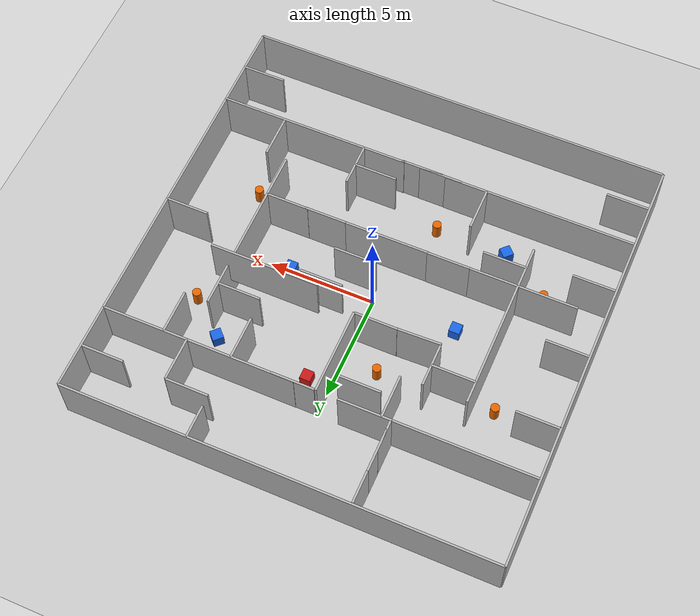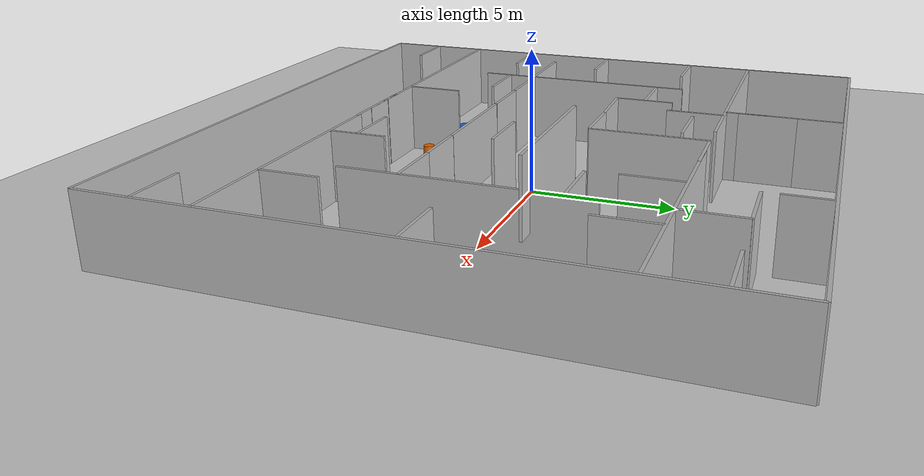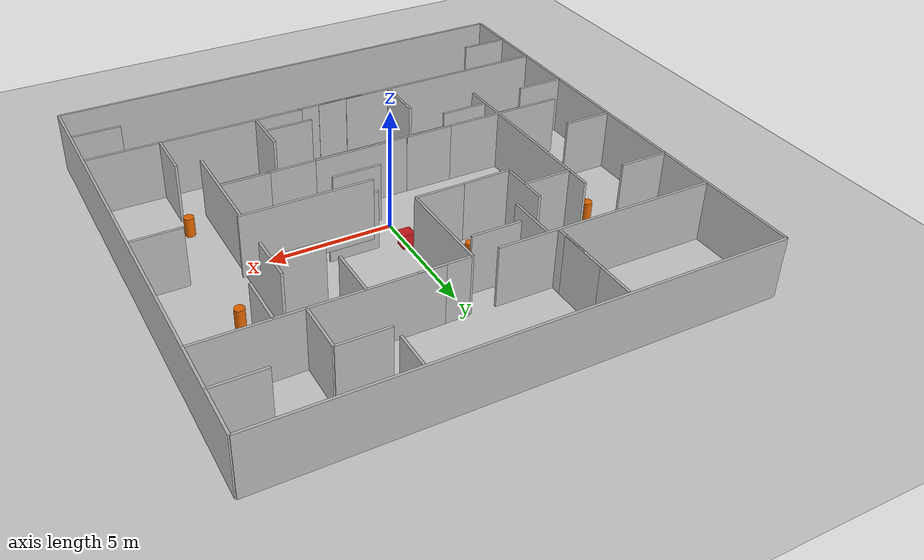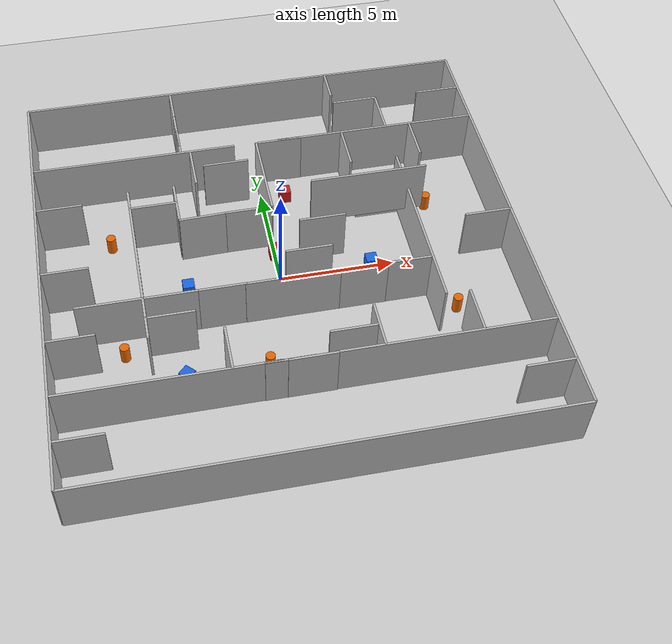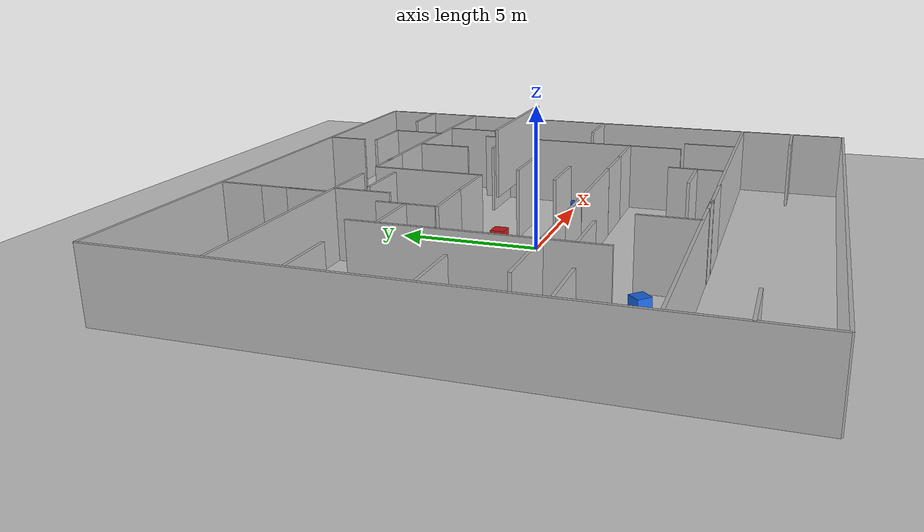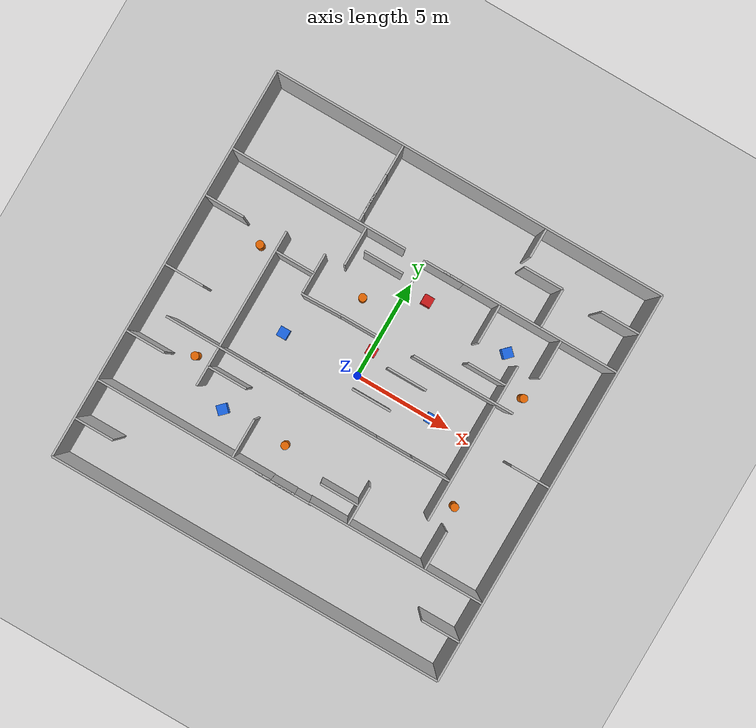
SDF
<sdf version="1.12">
 <world name="complex_maze">
  <physics name="1ms" type="ode">
   <max_step_size>0.001</max_step_size>
   <real_time_factor>1</real_time_factor>
   <real_time_update_rate>1000</real_time_update_rate>
  </physics>
  <plugin name="gz::sim::systems::Physics" filename="gz-sim-physics-system"/>
  <plugin name="gz::sim::systems::UserCommands" filename="gz-sim-user-commands-system"/>
  <plugin name="gz::sim::systems::SceneBroadcaster" filename="gz-sim-scene-broadcaster-system"/>
  <plugin name="gz::sim::systems::Contact" filename="gz-sim-contact-system"/>
  <plugin name="gz::sim::systems::Sensors" filename="gz-sim-sensors-system">
   <render_engine>ogre2</render_engine>
  </plugin>
  <gravity>0 0 -9.8000000000000007</gravity>
  <magnetic_field>5.5644999999999998e-06 2.2875799999999999e-05 -4.2388400000000002e-05</magnetic_field>
  <atmosphere type="adiabatic"/>
  <scene>
   <ambient>0.400000006 0.400000006 0.400000006 1</ambient>
   <background>0.699999988 0.699999988 0.699999988 1</background>
   <shadows>true</shadows>
  </scene>
  <model name="ground_plane">
   <static>true</static>
   <link name="link">
    <collision name="collision">
     <geometry><plane><normal>0 0 1</normal><size>100 100</size></plane></geometry>
    </collision>
    <visual name="visual">
     <geometry><plane><normal>0 0 1</normal><size>100 100</size></plane></geometry>
     <material>
      <ambient>0.800000012 0.800000012 0.800000012 1</ambient>
      <diffuse>0.800000012 0.800000012 0.800000012 1</diffuse>
      <specular>0.800000012 0.800000012 0.800000012 1</specular>
     </material>
    </visual>
    <inertial>
     <mass>1</mass>
     <inertia><ixx>1</ixx><ixy>0</ixy><ixz>0</ixz><iyy>1</iyy><iyz>0</iyz><izz>1</izz></inertia>
    </inertial>
   </link>
  </model>
  <model name="wall_1">
   <static>true</static>
   <pose>0 -10 1.25 0 0 0</pose>
   <link name="link">
    <collision name="collision">
     <geometry><box><size>20 0.10000000000000001 2.5</size></box></geometry>
    </collision>
    <visual name="visual"><geometry><box><size>20 0.10000000000000001 2.5</size></box></geometry></visual>
    <inertial>
     <mass>1</mass>
     <inertia><ixx>1</ixx><ixy>0</ixy><ixz>0</ixz><iyy>1</iyy><iyz>0</iyz><izz>1</izz></inertia>
    </inertial>
   </link>
  </model>
  <model name="wall_2">
   <static>true</static>
   <pose>0 10 1.25 0 0 0</pose>
   <link name="link">
    <collision name="collision">
     <geometry><box><size>20 0.10000000000000001 2.5</size></box></geometry>
    </collision>
    <visual name="visual"><geometry><box><size>20 0.10000000000000001 2.5</size></box></geometry></visual>
    <inertial>
     <mass>1</mass>
     <inertia><ixx>1</ixx><ixy>0</ixy><ixz>0</ixz><iyy>1</iyy><iyz>0</iyz><izz>1</izz></inertia>
    </inertial>
   </link>
  </model>
  <model name="wall_3">
   <static>true</static>
   <pose>-10 0 1.25 0 0 1.5708000000000013</pose>
   <link name="link">
    <collision name="collision">
     <geometry><box><size>20 0.10000000000000001 2.5</size></box></geometry>
    </collision>
    <visual name="visual"><geometry><box><size>20 0.10000000000000001 2.5</size></box></geometry></visual>
    <inertial>
     <mass>1</mass>
     <inertia><ixx>1</ixx><ixy>0</ixy><ixz>0</ixz><iyy>1</iyy><iyz>0</iyz><izz>1</izz></inertia>
    </inertial>
   </link>
  </model>
  <model name="wall_4">
   <static>true</static>
   <pose>10 0 1.25 0 0 1.5708000000000013</pose>
   <link name="link">
    <collision name="collision">
     <geometry><box><size>20 0.10000000000000001 2.5</size></box></geometry>
    </collision>
    <visual name="visual"><geometry><box><size>20 0.10000000000000001 2.5</size></box></geometry></visual>
    <inertial>
     <mass>1</mass>
     <inertia><ixx>1</ixx><ixy>0</ixy><ixz>0</ixz><iyy>1</iyy><iyz>0</iyz><izz>1</izz></inertia>
    </inertial>
   </link>
  </model>
  <model name="wall_5">
   <static>true</static>
   <pose>-5.5 -6 1.25 0 0 0</pose>
   <link name="link">
    <collision name="collision"><geometry><box><size>9 0.10000000000000001 2.5</size></box></geometry></collision>
    <visual name="visual"><geometry><box><size>9 0.10000000000000001 2.5</size></box></geometry></visual>
    <inertial>
     <mass>1</mass>
     <inertia><ixx>1</ixx><ixy>0</ixy><ixz>0</ixz><iyy>1</iyy><iyz>0</iyz><izz>1</izz></inertia>
    </inertial>
   </link>
  </model>
  <model name="wall_6">
   <static>true</static>
   <pose>5.5 -6 1.25 0 0 0</pose>
   <link name="link">
    <collision name="collision"><geometry><box><size>9 0.10000000000000001 2.5</size></box></geometry></collision>
    <visual name="visual"><geometry><box><size>9 0.10000000000000001 2.5</size></box></geometry></visual>
    <inertial>
     <mass>1</mass>
     <inertia><ixx>1</ixx><ixy>0</ixy><ixz>0</ixz><iyy>1</iyy><iyz>0</iyz><izz>1</izz></inertia>
    </inertial>
   </link>
  </model>
  <model name="wall_7">
   <static>true</static>
   <pose>-6.2522721290588379 -2 1.25 0 0 0</pose>
   <link name="link">
    <collision name="collision"><geometry><box><size>5 0.10000000000000001 2.5</size></box></geometry></collision>
    <visual name="visual"><geometry><box><size>5 0.10000000000000001 2.5</size></box></geometry></visual>
    <inertial>
     <mass>1</mass>
     <inertia><ixx>1</ixx><ixy>0</ixy><ixz>0</ixz><iyy>1</iyy><iyz>0</iyz><izz>1</izz></inertia>
    </inertial>
   </link>
  </model>
  <model name="wall_8">
   <static>true</static>
   <pose>-2.7576968669891357 -2 1.25 0 0 0</pose>
   <link name="link">
    <collision name="collision"><geometry><box><size>2 0.10000000000000001 2.5</size></box></geometry></collision>
    <visual name="visual"><geometry><box><size>2 0.10000000000000001 2.5</size></box></geometry></visual>
    <inertial>
     <mass>1</mass>
     <inertia><ixx>1</ixx><ixy>0</ixy><ixz>0</ixz><iyy>1</iyy><iyz>0</iyz><izz>1</izz></inertia>
    </inertial>
   </link>
  </model>
  <model name="wall_9">
   <static>true</static>
   <pose>3.126727819442749 -2 1.25 0 0 0</pose>
   <link name="link">
    <collision name="collision"><geometry><box><size>2 0.10000000000000001 2.5</size></box></geometry></collision>
    <visual name="visual"><geometry><box><size>2 0.10000000000000001 2.5</size></box></geometry></visual>
    <inertial>
     <mass>1</mass>
     <inertia><ixx>1</ixx><ixy>0</ixy><ixz>0</ixz><iyy>1</iyy><iyz>0</iyz><izz>1</izz></inertia>
    </inertial>
   </link>
  </model>
  <model name="wall_12">
   <static>true</static>
   <pose>-1.0161682367324829 2 1.25 0 0 0</pose>
   <link name="link">
    <collision name="collision"><geometry><box><size>2 0.10000000000000001 2.5</size></box></geometry></collision>
    <visual name="visual"><geometry><box><size>2 0.10000000000000001 2.5</size></box></geometry></visual>
    <inertial>
     <mass>1</mass>
     <inertia><ixx>1</ixx><ixy>0</ixy><ixz>0</ixz><iyy>1</iyy><iyz>0</iyz><izz>1</izz></inertia>
    </inertial>
   </link>
  </model>
  <model name="wall_14">
   <static>true</static>
   <pose>4.1832399368286133 2 2.4917588233947754 0 0 0</pose>
   <link name="link">
    <collision name="collision"><geometry><box><size>5 0.10000000000000001 2.5</size></box></geometry></collision>
    <visual name="visual"><geometry><box><size>5 0.10000000000000001 2.5</size></box></geometry></visual>
    <inertial>
     <mass>1</mass>
     <inertia><ixx>1</ixx><ixy>0</ixy><ixz>0</ixz><iyy>1</iyy><iyz>0</iyz><izz>1</izz></inertia>
    </inertial>
   </link>
  </model>
  <model name="wall_15">
   <static>true</static>
   <pose>-5.5 6 1.25 0 0 0</pose>
   <link name="link">
    <collision name="collision"><geometry><box><size>9 0.10000000000000001 2.5</size></box></geometry></collision>
    <visual name="visual"><geometry><box><size>9 0.10000000000000001 2.5</size></box></geometry></visual>
    <inertial>
     <mass>1</mass>
     <inertia><ixx>1</ixx><ixy>0</ixy><ixz>0</ixz><iyy>1</iyy><iyz>0</iyz><izz>1</izz></inertia>
    </inertial>
   </link>
  </model>
  <model name="wall_16">
   <static>true</static>
   <pose>5.5 6 1.25 0 0 0</pose>
   <link name="link">
    <collision name="collision"><geometry><box><size>9 0.10000000000000001 2.5</size></box></geometry></collision>
    <visual name="visual"><geometry><box><size>9 0.10000000000000001 2.5</size></box></geometry></visual>
    <inertial>
     <mass>1</mass>
     <inertia><ixx>1</ixx><ixy>0</ixy><ixz>0</ixz><iyy>1</iyy><iyz>0</iyz><izz>1</izz></inertia>
    </inertial>
   </link>
  </model>
  <model name="wall_17">
   <static>true</static>
   <pose>-3.4242401123046875 7.4474620819091797 1.25 0 0 1.5708000357176291</pose>
   <link name="link">
    <collision name="collision"><geometry><box><size>2 0.10000000000000001 2.5</size></box></geometry></collision>
    <visual name="visual"><geometry><box><size>2 0.10000000000000001 2.5</size></box></geometry></visual>
    <inertial>
     <mass>1</mass>
     <inertia><ixx>1</ixx><ixy>0</ixy><ixz>0</ixz><iyy>1</iyy><iyz>0</iyz><izz>1</izz></inertia>
    </inertial>
   </link>
  </model>
  <model name="wall_18">
   <static>true</static>
   <pose>-6 0 1.25 0 0 1.5708000000000013</pose>
   <link name="link">
    <collision name="collision"><geometry><box><size>8 0.10000000000000001 2.5</size></box></geometry></collision>
    <visual name="visual"><geometry><box><size>8 0.10000000000000001 2.5</size></box></geometry></visual>
    <inertial>
     <mass>1</mass>
     <inertia><ixx>1</ixx><ixy>0</ixy><ixz>0</ixz><iyy>1</iyy><iyz>0</iyz><izz>1</izz></inertia>
    </inertial>
   </link>
  </model>
  <model name="wall_20">
   <static>true</static>
   <pose>-3.0179769992828369 1.9657903909683228 1.25 0 0 0.030003099442409479</pose>
   <link name="link">
    <collision name="collision"><geometry><box><size>2 0.10000000000000001 2.5</size></box></geometry></collision>
    <visual name="visual"><geometry><box><size>2 0.10000000000000001 2.5</size></box></geometry></visual>
    <inertial>
     <mass>1</mass>
     <inertia><ixx>1</ixx><ixy>0</ixy><ixz>0</ixz><iyy>1</iyy><iyz>0</iyz><izz>1</izz></inertia>
    </inertial>
   </link>
  </model>
  <model name="wall_21">
   <static>true</static>
   <pose>6 0 1.25 0 0 1.5708000000000013</pose>
   <link name="link">
    <collision name="collision"><geometry><box><size>8 0.10000000000000001 2.5</size></box></geometry></collision>
    <visual name="visual"><geometry><box><size>8 0.10000000000000001 2.5</size></box></geometry></visual>
    <inertial>
     <mass>1</mass>
     <inertia><ixx>1</ixx><ixy>0</ixy><ixz>0</ixz><iyy>1</iyy><iyz>0</iyz><izz>1</izz></inertia>
    </inertial>
   </link>
  </model>
  <model name="wall_22">
   <static>true</static>
   <pose>6 7 1.25 0 0 1.5708000000000013</pose>
   <link name="link">
    <collision name="collision"><geometry><box><size>2 0.10000000000000001 2.5</size></box></geometry></collision>
    <visual name="visual"><geometry><box><size>2 0.10000000000000001 2.5</size></box></geometry></visual>
    <inertial>
     <mass>1</mass>
     <inertia><ixx>1</ixx><ixy>0</ixy><ixz>0</ixz><iyy>1</iyy><iyz>0</iyz><izz>1</izz></inertia>
    </inertial>
   </link>
  </model>
  <model name="wall_23">
   <static>true</static>
   <pose>0.15905123949050903 -2.0049998760223389 1.25 0 0 0.0034538498982187443</pose>
   <link name="link">
    <collision name="collision"><geometry><box><size>4 0.10000000000000001 2.5</size></box></geometry></collision>
    <visual name="visual"><geometry><box><size>4 0.10000000000000001 2.5</size></box></geometry></visual>
    <inertial>
     <mass>1</mass>
     <inertia><ixx>1</ixx><ixy>0</ixy><ixz>0</ixz><iyy>1</iyy><iyz>0</iyz><izz>1</izz></inertia>
    </inertial>
   </link>
  </model>
  <model name="wall_24">
   <static>true</static>
   <pose>0 4 1.25 0 0 1.5708000000000013</pose>
   <link name="link">
    <collision name="collision"><geometry><box><size>4 0.10000000000000001 2.5</size></box></geometry></collision>
    <visual name="visual"><geometry><box><size>4 0.10000000000000001 2.5</size></box></geometry></visual>
    <inertial>
     <mass>1</mass>
     <inertia><ixx>1</ixx><ixy>0</ixy><ixz>0</ixz><iyy>1</iyy><iyz>0</iyz><izz>1</izz></inertia>
    </inertial>
   </link>
  </model>
  <model name="wall_25">
   <static>true</static>
   <pose>-9 -8 1.25 0 0 0</pose>
   <link name="link">
    <collision name="collision"><geometry><box><size>2 0.10000000000000001 2.5</size></box></geometry></collision>
    <visual name="visual"><geometry><box><size>2 0.10000000000000001 2.5</size></box></geometry></visual>
    <inertial>
     <mass>1</mass>
     <inertia><ixx>1</ixx><ixy>0</ixy><ixz>0</ixz><iyy>1</iyy><iyz>0</iyz><izz>1</izz></inertia>
    </inertial>
   </link>
  </model>
  <model name="wall_26">
   <static>true</static>
   <pose>-0.75652599334716797 -6.0155282020568848 1.25 0 0 0</pose>
   <link name="link">
    <collision name="collision"><geometry><box><size>2 0.10000000000000001 2.5</size></box></geometry></collision>
    <visual name="visual"><geometry><box><size>2 0.10000000000000001 2.5</size></box></geometry></visual>
    <inertial>
     <mass>1</mass>
     <inertia><ixx>1</ixx><ixy>0</ixy><ixz>0</ixz><iyy>1</iyy><iyz>0</iyz><izz>1</izz></inertia>
    </inertial>
   </link>
  </model>
  <model name="wall_27">
   <static>true</static>
   <pose>-3.4183399677276611 9.1951065063476562 1.25 0 0 1.5708000357176291</pose>
   <link name="link">
    <collision name="collision">
     <geometry><box><size>1.5 0.10000000000000001 2.5</size></box></geometry>
    </collision>
    <visual name="visual"><geometry><box><size>1.5 0.10000000000000001 2.5</size></box></geometry></visual>
    <inertial>
     <mass>1</mass>
     <inertia><ixx>1</ixx><ixy>0</ixy><ixz>0</ixz><iyy>1</iyy><iyz>0</iyz><izz>1</izz></inertia>
    </inertial>
   </link>
  </model>
  <model name="wall_28">
   <static>true</static>
   <pose>0.14921990036964417 -6.0236001014709473 1.25 0 0 0</pose>
   <link name="link">
    <collision name="collision"><geometry><box><size>2 0.10000000000000001 2.5</size></box></geometry></collision>
    <visual name="visual"><geometry><box><size>2 0.10000000000000001 2.5</size></box></geometry></visual>
    <inertial>
     <mass>1</mass>
     <inertia><ixx>1</ixx><ixy>0</ixy><ixz>0</ixz><iyy>1</iyy><iyz>0</iyz><izz>1</izz></inertia>
    </inertial>
   </link>
  </model>
  <model name="wall_29">
   <static>true</static>
   <pose>9 -8 1.25 0 0 0</pose>
   <link name="link">
    <collision name="collision"><geometry><box><size>2 0.10000000000000001 2.5</size></box></geometry></collision>
    <visual name="visual"><geometry><box><size>2 0.10000000000000001 2.5</size></box></geometry></visual>
    <inertial>
     <mass>1</mass>
     <inertia><ixx>1</ixx><ixy>0</ixy><ixz>0</ixz><iyy>1</iyy><iyz>0</iyz><izz>1</izz></inertia>
    </inertial>
   </link>
  </model>
  <model name="wall_30">
   <static>true</static>
   <pose>-3.4246907234191895 6.758030891418457 1.25 0 0 1.5708000357176291</pose>
   <link name="link">
    <collision name="collision">
     <geometry><box><size>1.5 0.10000000000000001 2.5</size></box></geometry>
    </collision>
    <visual name="visual"><geometry><box><size>1.5 0.10000000000000001 2.5</size></box></geometry></visual>
    <inertial>
     <mass>1</mass>
     <inertia><ixx>1</ixx><ixy>0</ixy><ixz>0</ixz><iyy>1</iyy><iyz>0</iyz><izz>1</izz></inertia>
    </inertial>
   </link>
  </model>
  <model name="wall_32">
   <static>true</static>
   <pose>6.9839000000000002 -5 1.25 0 0 1.5708000000000013</pose>
   <link name="link">
    <collision name="collision"><geometry><box><size>2 0.10000000000000001 2.5</size></box></geometry></collision>
    <visual name="visual"><geometry><box><size>2 0.10000000000000001 2.5</size></box></geometry></visual>
    <inertial>
     <mass>1</mass>
     <inertia><ixx>1</ixx><ixy>0</ixy><ixz>0</ixz><iyy>1</iyy><iyz>0</iyz><izz>1</izz></inertia>
    </inertial>
   </link>
  </model>
  <model name="wall_33">
   <static>true</static>
   <pose>-9 -3.4482699999999999 1.25 0 0 0</pose>
   <link name="link">
    <collision name="collision"><geometry><box><size>2 0.10000000000000001 2.5</size></box></geometry></collision>
    <visual name="visual"><geometry><box><size>2 0.10000000000000001 2.5</size></box></geometry></visual>
    <inertial>
     <mass>1</mass>
     <inertia><ixx>1</ixx><ixy>0</ixy><ixz>0</ixz><iyy>1</iyy><iyz>0</iyz><izz>1</izz></inertia>
    </inertial>
   </link>
  </model>
  <model name="wall_35">
   <static>true</static>
   <pose>-3 -5 1.25 0 0 1.5708000000000013</pose>
   <link name="link">
    <collision name="collision"><geometry><box><size>2 0.10000000000000001 2.5</size></box></geometry></collision>
    <visual name="visual"><geometry><box><size>2 0.10000000000000001 2.5</size></box></geometry></visual>
    <inertial>
     <mass>1</mass>
     <inertia><ixx>1</ixx><ixy>0</ixy><ixz>0</ixz><iyy>1</iyy><iyz>0</iyz><izz>1</izz></inertia>
    </inertial>
   </link>
  </model>
  <model name="wall_36">
   <static>true</static>
   <pose>3 -5 1.25 0 0 1.5708000000000013</pose>
   <link name="link">
    <collision name="collision"><geometry><box><size>2 0.10000000000000001 2.5</size></box></geometry></collision>
    <visual name="visual"><geometry><box><size>2 0.10000000000000001 2.5</size></box></geometry></visual>
    <inertial>
     <mass>1</mass>
     <inertia><ixx>1</ixx><ixy>0</ixy><ixz>0</ixz><iyy>1</iyy><iyz>0</iyz><izz>1</izz></inertia>
    </inertial>
   </link>
  </model>
  <model name="wall_37">
   <static>true</static>
   <pose>-5 -3 1.25 0 0 0</pose>
   <link name="link">
    <collision name="collision"><geometry><box><size>2 0.10000000000000001 2.5</size></box></geometry></collision>
    <visual name="visual"><geometry><box><size>2 0.10000000000000001 2.5</size></box></geometry></visual>
    <inertial>
     <mass>1</mass>
     <inertia><ixx>1</ixx><ixy>0</ixy><ixz>0</ixz><iyy>1</iyy><iyz>0</iyz><izz>1</izz></inertia>
    </inertial>
   </link>
  </model>
  <model name="wall_38">
   <static>true</static>
   <pose>5 -1.9934406280517578 1.25 0 0 0</pose>
   <link name="link">
    <collision name="collision"><geometry><box><size>2 0.10000000000000001 2.5</size></box></geometry></collision>
    <visual name="visual"><geometry><box><size>2 0.10000000000000001 2.5</size></box></geometry></visual>
    <inertial>
     <mass>1</mass>
     <inertia><ixx>1</ixx><ixy>0</ixy><ixz>0</ixz><iyy>1</iyy><iyz>0</iyz><izz>1</izz></inertia>
    </inertial>
   </link>
  </model>
  <model name="wall_40">
   <static>true</static>
   <pose>2 1 1.25 0 0 0</pose>
   <link name="link">
    <collision name="collision"><geometry><box><size>2 0.10000000000000001 2.5</size></box></geometry></collision>
    <visual name="visual"><geometry><box><size>2 0.10000000000000001 2.5</size></box></geometry></visual>
    <inertial>
     <mass>1</mass>
     <inertia><ixx>1</ixx><ixy>0</ixy><ixz>0</ixz><iyy>1</iyy><iyz>0</iyz><izz>1</izz></inertia>
    </inertial>
   </link>
  </model>
  <model name="wall_43">
   <static>true</static>
   <pose>-9 0 1.25 0 0 0</pose>
   <link name="link">
    <collision name="collision"><geometry><box><size>2 0.10000000000000001 2.5</size></box></geometry></collision>
    <visual name="visual"><geometry><box><size>2 0.10000000000000001 2.5</size></box></geometry></visual>
    <inertial>
     <mass>1</mass>
     <inertia><ixx>1</ixx><ixy>0</ixy><ixz>0</ixz><iyy>1</iyy><iyz>0</iyz><izz>1</izz></inertia>
    </inertial>
   </link>
  </model>
  <model name="wall_44">
   <static>true</static>
   <pose>9 0 1.25 0 0 0</pose>
   <link name="link">
    <collision name="collision"><geometry><box><size>2 0.10000000000000001 2.5</size></box></geometry></collision>
    <visual name="visual"><geometry><box><size>2 0.10000000000000001 2.5</size></box></geometry></visual>
    <inertial>
     <mass>1</mass>
     <inertia><ixx>1</ixx><ixy>0</ixy><ixz>0</ixz><iyy>1</iyy><iyz>0</iyz><izz>1</izz></inertia>
    </inertial>
   </link>
  </model>
  <model name="wall_45">
   <static>true</static>
   <pose>-3 5 1.25 0 0 1.5708000000000013</pose>
   <link name="link">
    <collision name="collision"><geometry><box><size>2 0.10000000000000001 2.5</size></box></geometry></collision>
    <visual name="visual"><geometry><box><size>2 0.10000000000000001 2.5</size></box></geometry></visual>
    <inertial>
     <mass>1</mass>
     <inertia><ixx>1</ixx><ixy>0</ixy><ixz>0</ixz><iyy>1</iyy><iyz>0</iyz><izz>1</izz></inertia>
    </inertial>
   </link>
  </model>
  <model name="wall_46">
   <static>true</static>
   <pose>3.9302100000000002 5 1.25 0 0 1.5708000000000013</pose>
   <link name="link">
    <collision name="collision"><geometry><box><size>2 0.10000000000000001 2.5</size></box></geometry></collision>
    <visual name="visual"><geometry><box><size>2 0.10000000000000001 2.5</size></box></geometry></visual>
    <inertial>
     <mass>1</mass>
     <inertia><ixx>1</ixx><ixy>0</ixy><ixz>0</ixz><iyy>1</iyy><iyz>0</iyz><izz>1</izz></inertia>
    </inertial>
   </link>
  </model>
  <model name="wall_47">
   <static>true</static>
   <pose>-5 3 1.25 0 0 0</pose>
   <link name="link">
    <collision name="collision"><geometry><box><size>2 0.10000000000000001 2.5</size></box></geometry></collision>
    <visual name="visual"><geometry><box><size>2 0.10000000000000001 2.5</size></box></geometry></visual>
    <inertial>
     <mass>1</mass>
     <inertia><ixx>1</ixx><ixy>0</ixy><ixz>0</ixz><iyy>1</iyy><iyz>0</iyz><izz>1</izz></inertia>
    </inertial>
   </link>
  </model>
  <model name="wall_48">
   <static>true</static>
   <pose>5 3 1.25 0 0 0</pose>
   <link name="link">
    <collision name="collision"><geometry><box><size>2 0.10000000000000001 2.5</size></box></geometry></collision>
    <visual name="visual"><geometry><box><size>2 0.10000000000000001 2.5</size></box></geometry></visual>
    <inertial>
     <mass>1</mass>
     <inertia><ixx>1</ixx><ixy>0</ixy><ixz>0</ixz><iyy>1</iyy><iyz>0</iyz><izz>1</izz></inertia>
    </inertial>
   </link>
  </model>
  <model name="wall_50">
   <static>true</static>
   <pose>7.1028399999999996 5 1.25 0 0 1.5708000000000013</pose>
   <link name="link">
    <collision name="collision"><geometry><box><size>2 0.10000000000000001 2.5</size></box></geometry></collision>
    <visual name="visual"><geometry><box><size>2 0.10000000000000001 2.5</size></box></geometry></visual>
    <inertial>
     <mass>1</mass>
     <inertia><ixx>1</ixx><ixy>0</ixy><ixz>0</ixz><iyy>1</iyy><iyz>0</iyz><izz>1</izz></inertia>
    </inertial>
   </link>
  </model>
  <model name="wall_51">
   <static>true</static>
   <pose>-9 3.5889899999999999 1.25 0 0 0</pose>
   <link name="link">
    <collision name="collision"><geometry><box><size>2 0.10000000000000001 2.5</size></box></geometry></collision>
    <visual name="visual"><geometry><box><size>2 0.10000000000000001 2.5</size></box></geometry></visual>
    <inertial>
     <mass>1</mass>
     <inertia><ixx>1</ixx><ixy>0</ixy><ixz>0</ixz><iyy>1</iyy><iyz>0</iyz><izz>1</izz></inertia>
    </inertial>
   </link>
  </model>
  <model name="wall_53">
   <static>true</static>
   <pose>-4 3 1.25 0 0 1.5708000000000013</pose>
   <link name="link">
    <collision name="collision"><geometry><box><size>2 0.10000000000000001 2.5</size></box></geometry></collision>
    <visual name="visual"><geometry><box><size>2 0.10000000000000001 2.5</size></box></geometry></visual>
    <inertial>
     <mass>1</mass>
     <inertia><ixx>1</ixx><ixy>0</ixy><ixz>0</ixz><iyy>1</iyy><iyz>0</iyz><izz>1</izz></inertia>
    </inertial>
   </link>
  </model>
  <model name="wall_55">
   <static>true</static>
   <pose>2 -5 1.25 0 0 0</pose>
   <link name="link">
    <collision name="collision"><geometry><box><size>2 0.10000000000000001 2.5</size></box></geometry></collision>
    <visual name="visual"><geometry><box><size>2 0.10000000000000001 2.5</size></box></geometry></visual>
    <inertial>
     <mass>1</mass>
     <inertia><ixx>1</ixx><ixy>0</ixy><ixz>0</ixz><iyy>1</iyy><iyz>0</iyz><izz>1</izz></inertia>
    </inertial>
   </link>
  </model>
  <model name="wall_56">
   <static>true</static>
   <pose>-1.54487 5 1.25 0 0 0</pose>
   <link name="link">
    <collision name="collision"><geometry><box><size>2 0.10000000000000001 2.5</size></box></geometry></collision>
    <visual name="visual"><geometry><box><size>2 0.10000000000000001 2.5</size></box></geometry></visual>
    <inertial>
     <mass>1</mass>
     <inertia><ixx>1</ixx><ixy>0</ixy><ixz>0</ixz><iyy>1</iyy><iyz>0</iyz><izz>1</izz></inertia>
    </inertial>
   </link>
  </model>
  <model name="wall_57">
   <static>true</static>
   <pose>1.052402138710022 5.9895200729370117 1.25 0 0 0</pose>
   <link name="link">
    <collision name="collision"><geometry><box><size>2 0.10000000000000001 2.5</size></box></geometry></collision>
    <visual name="visual"><geometry><box><size>2 0.10000000000000001 2.5</size></box></geometry></visual>
    <inertial>
     <mass>1</mass>
     <inertia><ixx>1</ixx><ixy>0</ixy><ixz>0</ixz><iyy>1</iyy><iyz>0</iyz><izz>1</izz></inertia>
    </inertial>
   </link>
  </model>
  <model name="wall_58">
   <static>true</static>
   <pose>1.0880800485610962 -0.61565810441970825 1.25 0 0 0</pose>
   <link name="link">
    <collision name="collision"><geometry><box><size>2 0.10000000000000001 2.5</size></box></geometry></collision>
    <visual name="visual"><geometry><box><size>2 0.10000000000000001 2.5</size></box></geometry></visual>
    <inertial>
     <mass>1</mass>
     <inertia><ixx>1</ixx><ixy>0</ixy><ixz>0</ixz><iyy>1</iyy><iyz>0</iyz><izz>1</izz></inertia>
    </inertial>
   </link>
  </model>
  <model name="wall_60">
   <static>true</static>
   <pose>5 8 1.25 0 0 0</pose>
   <link name="link">
    <collision name="collision"><geometry><box><size>2 0.10000000000000001 2.5</size></box></geometry></collision>
    <visual name="visual"><geometry><box><size>2 0.10000000000000001 2.5</size></box></geometry></visual>
    <inertial>
     <mass>1</mass>
     <inertia><ixx>1</ixx><ixy>0</ixy><ixz>0</ixz><iyy>1</iyy><iyz>0</iyz><izz>1</izz></inertia>
    </inertial>
   </link>
  </model>
  <model name="wall_61">
   <static>true</static>
   <pose>9 8 1.25 0 0 0</pose>
   <link name="link">
    <collision name="collision"><geometry><box><size>2 0.10000000000000001 2.5</size></box></geometry></collision>
    <visual name="visual"><geometry><box><size>2 0.10000000000000001 2.5</size></box></geometry></visual>
    <inertial>
     <mass>1</mass>
     <inertia><ixx>1</ixx><ixy>0</ixy><ixz>0</ixz><iyy>1</iyy><iyz>0</iyz><izz>1</izz></inertia>
    </inertial>
   </link>
  </model>
  <model name="wall_62">
   <static>true</static>
   <pose>4 9.25 1.25 0 0 1.5708000000000013</pose>
   <link name="link">
    <collision name="collision">
     <geometry><box><size>1.5 0.10000000000000001 2.5</size></box></geometry>
    </collision>
    <visual name="visual"><geometry><box><size>1.5 0.10000000000000001 2.5</size></box></geometry></visual>
    <inertial>
     <mass>1</mass>
     <inertia><ixx>1</ixx><ixy>0</ixy><ixz>0</ixz><iyy>1</iyy><iyz>0</iyz><izz>1</izz></inertia>
    </inertial>
   </link>
  </model>
  <model name="obstacle_cylinder_1">
   <static>true</static>
   <pose>-7 -3 0.40000000000000002 0 0 0</pose>
   <link name="link">
    <collision name="collision">
     <geometry>
      <cylinder><radius>0.20000000000000001</radius><length>0.80000000000000004</length></cylinder>
     </geometry>
    </collision>
    <visual name="visual">
     <geometry>
      <cylinder><radius>0.20000000000000001</radius><length>0.80000000000000004</length></cylinder>
     </geometry>
     <material>
      <ambient>0.899999976 0.400000006 0 1</ambient>
      <diffuse>0.899999976 0.400000006 0 1</diffuse>
      <specular>0.300000012 0.100000001 0 1</specular>
     </material>
    </visual>
    <inertial>
     <mass>1</mass>
     <inertia><ixx>1</ixx><ixy>0</ixy><ixz>0</ixz><iyy>1</iyy><iyz>0</iyz><izz>1</izz></inertia>
    </inertial>
   </link>
  </model>
  <model name="obstacle_cylinder_2">
   <static>true</static>
   <pose>7 -3 0.40000000000000002 0 0 0</pose>
   <link name="link">
    <collision name="collision">
     <geometry>
      <cylinder><radius>0.20000000000000001</radius><length>0.80000000000000004</length></cylinder>
     </geometry>
    </collision>
    <visual name="visual">
     <geometry>
      <cylinder><radius>0.20000000000000001</radius><length>0.80000000000000004</length></cylinder>
     </geometry>
     <material>
      <ambient>0.899999976 0.400000006 0 1</ambient>
      <diffuse>0.899999976 0.400000006 0 1</diffuse>
      <specular>0.300000012 0.100000001 0 1</specular>
     </material>
    </visual>
    <inertial>
     <mass>1</mass>
     <inertia><ixx>1</ixx><ixy>0</ixy><ixz>0</ixz><iyy>1</iyy><iyz>0</iyz><izz>1</izz></inertia>
    </inertial>
   </link>
  </model>
  <model name="obstacle_cylinder_3">
   <static>true</static>
   <pose>-7 3 0.40000000000000002 0 0 0</pose>
   <link name="link">
    <collision name="collision">
     <geometry>
      <cylinder><radius>0.20000000000000001</radius><length>0.80000000000000004</length></cylinder>
     </geometry>
    </collision>
    <visual name="visual">
     <geometry>
      <cylinder><radius>0.20000000000000001</radius><length>0.80000000000000004</length></cylinder>
     </geometry>
     <material>
      <ambient>0.899999976 0.400000006 0 1</ambient>
      <diffuse>0.899999976 0.400000006 0 1</diffuse>
      <specular>0.300000012 0.100000001 0 1</specular>
     </material>
    </visual>
    <inertial>
     <mass>1</mass>
     <inertia><ixx>1</ixx><ixy>0</ixy><ixz>0</ixz><iyy>1</iyy><iyz>0</iyz><izz>1</izz></inertia>
    </inertial>
   </link>
  </model>
  <model name="obstacle_cylinder_4">
   <static>true</static>
   <pose>7.2255599999999998 3 0.40000000000000002 0 0 0</pose>
   <link name="link">
    <collision name="collision">
     <geometry>
      <cylinder><radius>0.20000000000000001</radius><length>0.80000000000000004</length></cylinder>
     </geometry>
    </collision>
    <visual name="visual">
     <geometry>
      <cylinder><radius>0.20000000000000001</radius><length>0.80000000000000004</length></cylinder>
     </geometry>
     <material>
      <ambient>0.899999976 0.400000006 0 1</ambient>
      <diffuse>0.899999976 0.400000006 0 1</diffuse>
      <specular>0.300000012 0.100000001 0 1</specular>
     </material>
    </visual>
    <inertial>
     <mass>1</mass>
     <inertia><ixx>1</ixx><ixy>0</ixy><ixz>0</ixz><iyy>1</iyy><iyz>0</iyz><izz>1</izz></inertia>
    </inertial>
   </link>
  </model>
  <model name="obstacle_cylinder_5">
   <static>true</static>
   <pose>-1.2732000000000001 -4.5 0.40000000000000002 0 0 0</pose>
   <link name="link">
    <collision name="collision">
     <geometry>
      <cylinder><radius>0.20000000000000001</radius><length>0.80000000000000004</length></cylinder>
     </geometry>
    </collision>
    <visual name="visual">
     <geometry>
      <cylinder><radius>0.20000000000000001</radius><length>0.80000000000000004</length></cylinder>
     </geometry>
     <material>
      <ambient>0.899999976 0.400000006 0 1</ambient>
      <diffuse>0.899999976 0.400000006 0 1</diffuse>
      <specular>0.300000012 0.100000001 0 1</specular>
     </material>
    </visual>
    <inertial>
     <mass>1</mass>
     <inertia><ixx>1</ixx><ixy>0</ixy><ixz>0</ixz><iyy>1</iyy><iyz>0</iyz><izz>1</izz></inertia>
    </inertial>
   </link>
  </model>
  <model name="obstacle_cylinder_6">
   <static>true</static>
   <pose>-1.6187100000000001 3.2813099999999999 0.40000000000000002 0 0 0</pose>
   <link name="link">
    <collision name="collision">
     <geometry>
      <cylinder><radius>0.20000000000000001</radius><length>0.80000000000000004</length></cylinder>
     </geometry>
    </collision>
    <visual name="visual">
     <geometry>
      <cylinder><radius>0.20000000000000001</radius><length>0.80000000000000004</length></cylinder>
     </geometry>
     <material>
      <ambient>0.899999976 0.400000006 0 1</ambient>
      <diffuse>0.899999976 0.400000006 0 1</diffuse>
      <specular>0.300000012 0.100000001 0 1</specular>
     </material>
    </visual>
    <inertial>
     <mass>1</mass>
     <inertia><ixx>1</ixx><ixy>0</ixy><ixz>0</ixz><iyy>1</iyy><iyz>0</iyz><izz>1</izz></inertia>
    </inertial>
   </link>
  </model>
  <model name="obstacle_box_1">
   <static>true</static>
   <pose>-4 0 0.29999999999999999 0 0 0</pose>
   <link name="link">
    <collision name="collision">
     <geometry><box><size>0.5 0.5 0.59999999999999998</size></box></geometry>
    </collision>
    <visual name="visual">
     <geometry><box><size>0.5 0.5 0.59999999999999998</size></box></geometry>
     <material>
      <ambient>0.100000001 0.400000006 0.899999976 1</ambient>
      <diffuse>0.100000001 0.400000006 0.899999976 1</diffuse>
      <specular>0.0500000007 0.100000001 0.300000012 1</specular>
     </material>
    </visual>
    <inertial>
     <mass>1</mass>
     <inertia><ixx>1</ixx><ixy>0</ixy><ixz>0</ixz><iyy>1</iyy><iyz>0</iyz><izz>1</izz></inertia>
    </inertial>
   </link>
  </model>
  <model name="obstacle_box_2">
   <static>true</static>
   <pose>4 0 0.29999999999999999 0 0 0</pose>
   <link name="link">
    <collision name="collision">
     <geometry><box><size>0.5 0.5 0.59999999999999998</size></box></geometry>
    </collision>
    <visual name="visual">
     <geometry><box><size>0.5 0.5 0.59999999999999998</size></box></geometry>
     <material>
      <ambient>0.100000001 0.400000006 0.899999976 1</ambient>
      <diffuse>0.100000001 0.400000006 0.899999976 1</diffuse>
      <specular>0.0500000007 0.100000001 0.300000012 1</specular>
     </material>
    </visual>
    <inertial>
     <mass>1</mass>
     <inertia><ixx>1</ixx><ixy>0</ixy><ixz>0</ixz><iyy>1</iyy><iyz>0</iyz><izz>1</izz></inertia>
    </inertial>
   </link>
  </model>
  <model name="obstacle_box_3">
   <static>true</static>
   <pose>-4.6646599999999996 -4.5361599999999997 0.29999999999999999 0 0 0.7850000000000007</pose>
   <link name="link">
    <collision name="collision">
     <geometry><box><size>0.5 0.5 0.59999999999999998</size></box></geometry>
    </collision>
    <visual name="visual">
     <geometry><box><size>0.5 0.5 0.59999999999999998</size></box></geometry>
     <material>
      <ambient>0.100000001 0.400000006 0.899999976 1</ambient>
      <diffuse>0.100000001 0.400000006 0.899999976 1</diffuse>
      <specular>0.0500000007 0.100000001 0.300000012 1</specular>
     </material>
    </visual>
    <inertial>
     <mass>1</mass>
     <inertia><ixx>1</ixx><ixy>0</ixy><ixz>0</ixz><iyy>1</iyy><iyz>0</iyz><izz>1</izz></inertia>
    </inertial>
   </link>
  </model>
  <model name="obstacle_box_4">
   <static>true</static>
   <pose>5.5314300000000003 4.4673499999999997 0.29999999999999999 0 0 0.7850000000000007</pose>
   <link name="link">
    <collision name="collision">
     <geometry><box><size>0.5 0.5 0.59999999999999998</size></box></geometry>
    </collision>
    <visual name="visual">
     <geometry><box><size>0.5 0.5 0.59999999999999998</size></box></geometry>
     <material>
      <ambient>0.100000001 0.400000006 0.899999976 1</ambient>
      <diffuse>0.100000001 0.400000006 0.899999976 1</diffuse>
      <specular>0.0500000007 0.100000001 0.300000012 1</specular>
     </material>
    </visual>
    <inertial>
     <mass>1</mass>
     <inertia><ixx>1</ixx><ixy>0</ixy><ixz>0</ixz><iyy>1</iyy><iyz>0</iyz><izz>1</izz></inertia>
    </inertial>
   </link>
  </model>
  <model name="obstacle_box_5">
   <static>true</static>
   <pose>0 1.3510942459106445 0.30000001192092896 0 0 0</pose>
   <link name="link">
    <collision name="collision">
     <geometry><box><size>0.5 0.5 0.59999999999999998</size></box></geometry>
    </collision>
    <visual name="visual">
     <geometry><box><size>0.5 0.5 0.59999999999999998</size></box></geometry>
     <material>
      <ambient>0.800000012 0.100000001 0.100000001 1</ambient>
      <diffuse>0.800000012 0.100000001 0.100000001 1</diffuse>
      <specular>0.300000012 0.0500000007 0.0500000007 1</specular>
     </material>
    </visual>
    <inertial>
     <mass>1</mass>
     <inertia><ixx>1</ixx><ixy>0</ixy><ixz>0</ixz><iyy>1</iyy><iyz>0</iyz><izz>1</izz></inertia>
    </inertial>
   </link>
  </model>
  <model name="obstacle_box_5_1">
   <static>true</static>
   <pose>1.0710900000000001 4.6945199999999998 0.29999999999999999 0 0 0</pose>
   <link name="link">
    <collision name="collision">
     <geometry><box><size>0.5 0.5 0.59999999999999998</size></box></geometry>
    </collision>
    <visual name="visual">
     <geometry><box><size>0.5 0.5 0.59999999999999998</size></box></geometry>
     <material>
      <ambient>0.800000012 0.100000001 0.100000001 1</ambient>
      <diffuse>0.800000012 0.100000001 0.100000001 1</diffuse>
      <specular>0.300000012 0.0500000007 0.0500000007 1</specular>
     </material>
    </visual>
    <inertial>
     <mass>1</mass>
     <inertia><ixx>1</ixx><ixy>0</ixy><ixz>0</ixz><iyy>1</iyy><iyz>0</iyz><izz>1</izz></inertia>
    </inertial>
   </link>
  </model>
  <light name="sun" type="directional">
   <pose>0 0 10 0 0 0</pose>
   <intensity>1</intensity>
   <direction>-0.5 0.10000000000000001 -0.90000000000000002</direction>
   <diffuse>0.800000012 0.800000012 0.800000012 1</diffuse>
   <specular>0.200000003 0.200000003 0.200000003 1</specular>
   <attenuation>
    <range>1000</range>
    <linear>0.0099999997764825821</linear>
    <constant>0.89999997615814209</constant>
    <quadratic>0.0010000000474974513</quadratic>
   </attenuation>
   <spot><inner_angle>0</inner_angle><outer_angle>0</outer_angle><falloff>0</falloff></spot>
  </light>
 </world>
</sdf>
